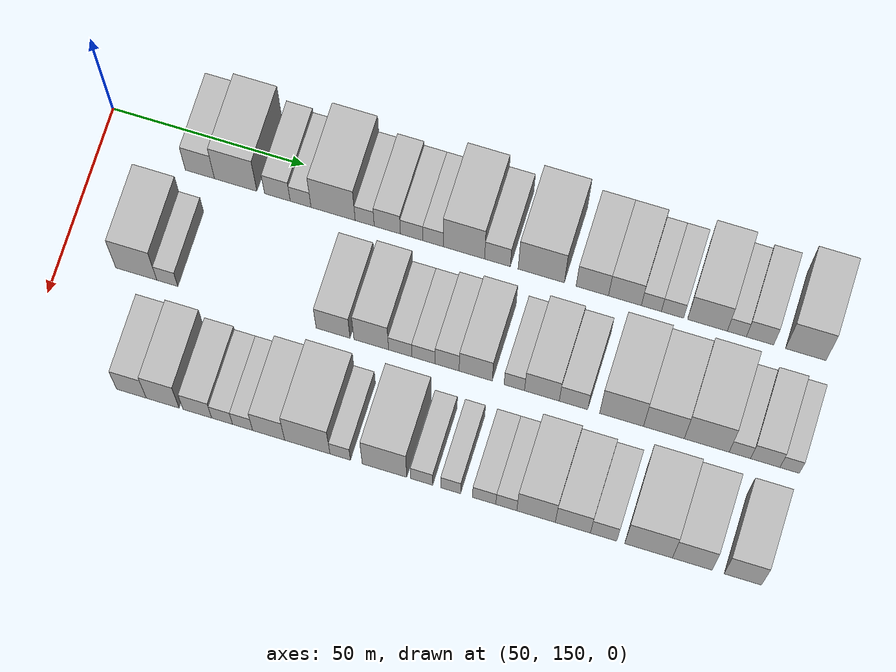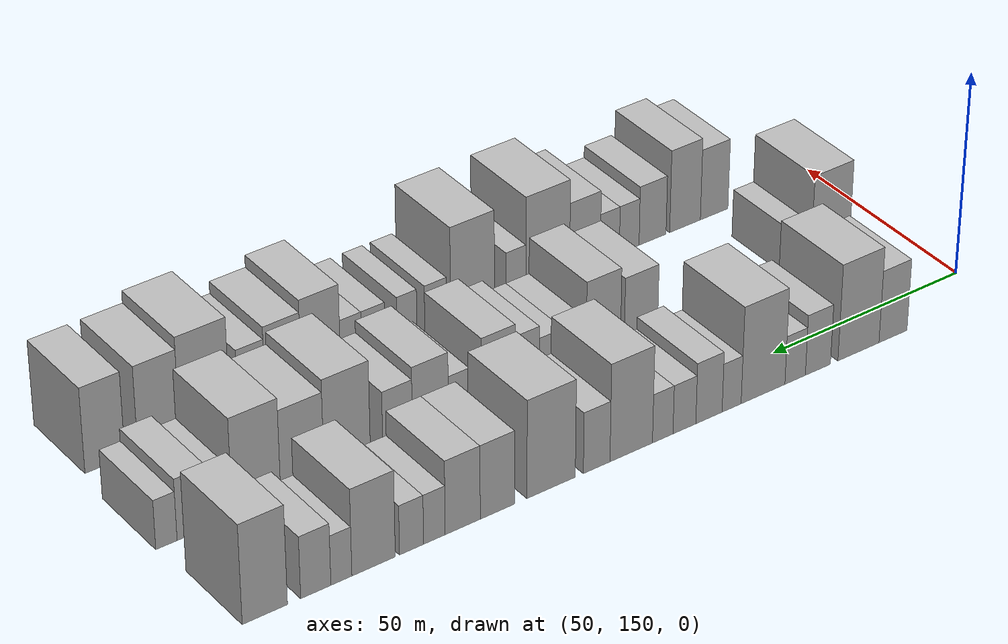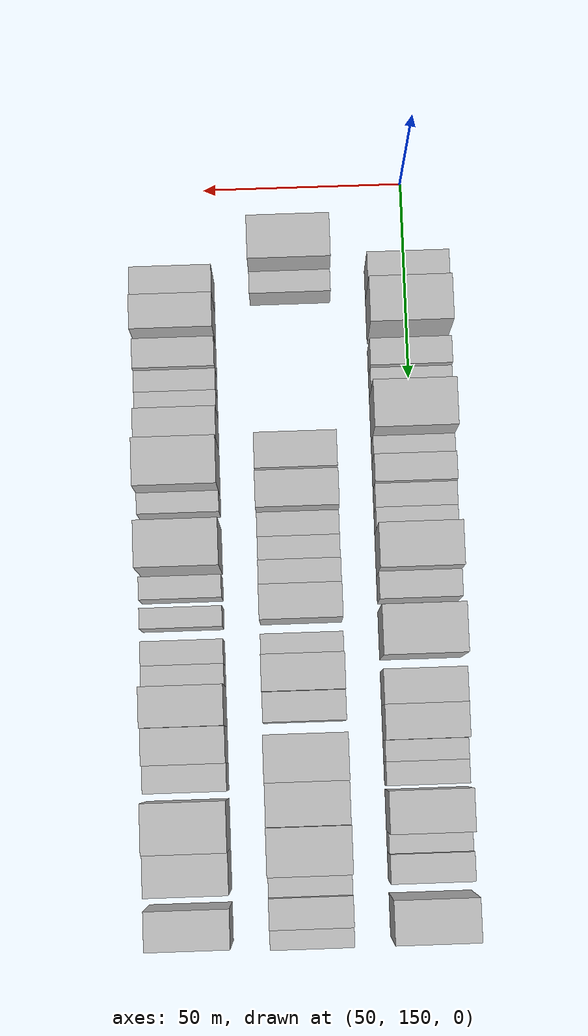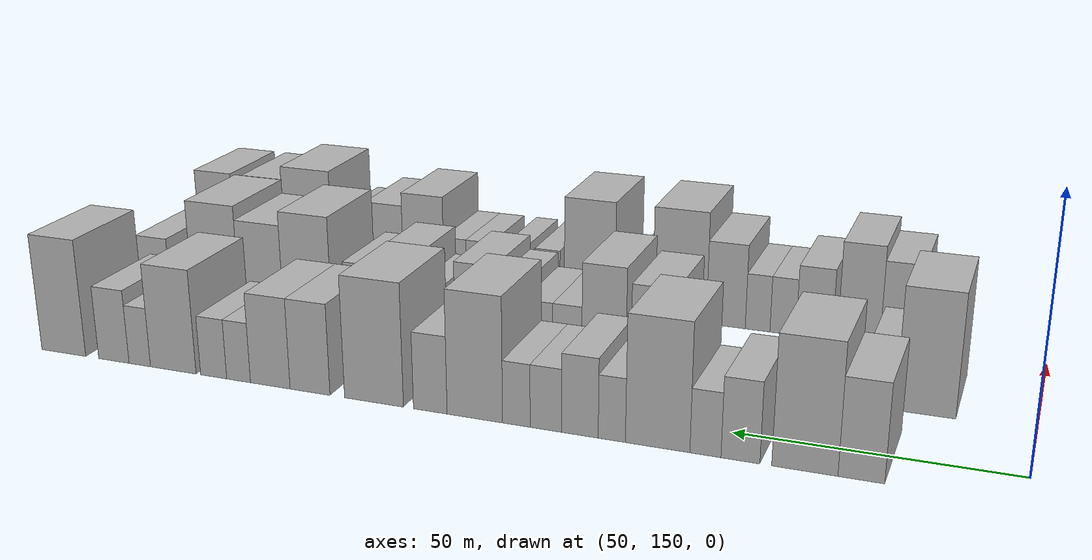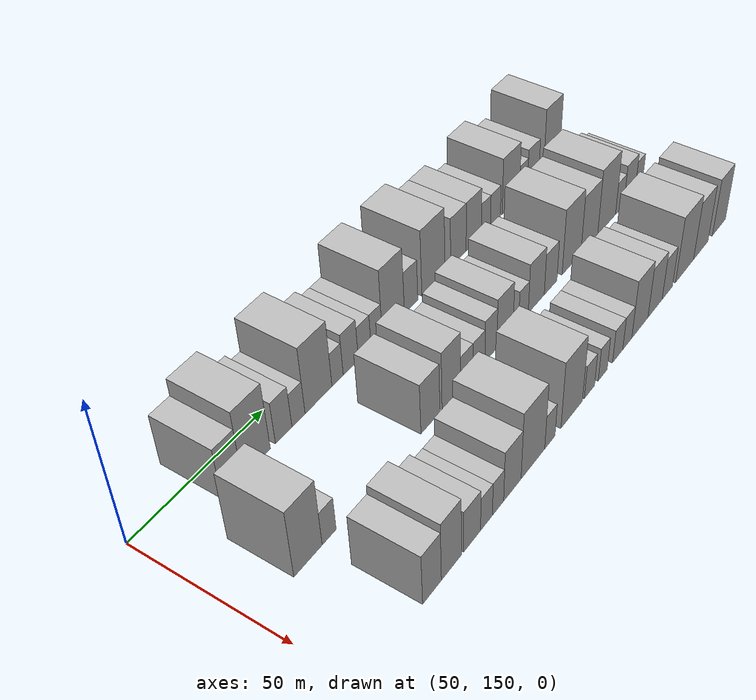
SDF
<sdf version="1.6">
 <world name="default">
  <model name="building_57">
   <static>1</static>
   <pose>50.0000 176.1401 0 0.000000 0.000000 0.000000</pose>
   <link name="link">
    <pose>0 0 9.00 0 0 0</pose>
    <collision name="collision"><geometry><box><size>20.0000 7.6315 18.0000</size></box></geometry></collision>
    <visual name="visual">
     <cast_shadows>0</cast_shadows>
     <geometry><box><size>20.0000 7.6315 18.0000</size></box></geometry>
     <material>
      <script>
       <uri>model://HANNAS_wall/materials/scripts</uri>
       <uri>model://HANNAS_wall/materials/textures</uri>
       <name>vrc/HANNAS_wall</name>
      </script>
     </material>
    </visual>
   </link>
  </model>
  <model name="building_58">
   <static>1</static>
   <pose>50.0000 185.4895 0 0.000000 0.000000 0.000000</pose>
   <link name="link">
    <pose>0 0 12.00 0 0 0</pose>
    <collision name="collision"><geometry><box><size>20.0000 11.0673 24.0000</size></box></geometry></collision>
    <visual name="visual">
     <cast_shadows>0</cast_shadows>
     <geometry><box><size>20.0000 11.0673 24.0000</size></box></geometry>
     <material>
      <script>
       <uri>model://HANNAS_wall/materials/scripts</uri>
       <uri>model://HANNAS_wall/materials/textures</uri>
       <name>vrc/HANNAS_wall</name>
      </script>
     </material>
    </visual>
   </link>
  </model>
  <model name="building_59">
   <static>1</static>
   <pose>50.0000 196.3591 0 0.000000 0.000000 0.000000</pose>
   <link name="link">
    <pose>0 0 7.50 0 0 0</pose>
    <collision name="collision"><geometry><box><size>20.0000 6.6718 15.0000</size></box></geometry></collision>
    <visual name="visual">
     <cast_shadows>0</cast_shadows>
     <geometry><box><size>20.0000 6.6718 15.0000</size></box></geometry>
     <material>
      <script>
       <uri>model://HANNAS_wall/materials/scripts</uri>
       <uri>model://HANNAS_wall/materials/textures</uri>
       <name>vrc/HANNAS_wall</name>
      </script>
     </material>
    </visual>
   </link>
  </model>
  <model name="building_60">
   <static>1</static>
   <pose>50.0000 202.4018 0 0.000000 0.000000 0.000000</pose>
   <link name="link">
    <pose>0 0 6.00 0 0 0</pose>
    <collision name="collision"><geometry><box><size>20.0000 5.4138 12.0000</size></box></geometry></collision>
    <visual name="visual">
     <cast_shadows>0</cast_shadows>
     <geometry><box><size>20.0000 5.4138 12.0000</size></box></geometry>
     <material>
      <script>
       <uri>model://HANNAS_wall/materials/scripts</uri>
       <uri>model://HANNAS_wall/materials/textures</uri>
       <name>vrc/HANNAS_wall</name>
      </script>
     </material>
    </visual>
   </link>
  </model>
  <model name="building_61">
   <static>1</static>
   <pose>50.0000 210.8431 0 0.000000 0.000000 0.000000</pose>
   <link name="link">
    <pose>0 0 12.00 0 0 0</pose>
    <collision name="collision"><geometry><box><size>20.0000 11.4686 24.0000</size></box></geometry></collision>
    <visual name="visual">
     <cast_shadows>0</cast_shadows>
     <geometry><box><size>20.0000 11.4686 24.0000</size></box></geometry>
     <material>
      <script>
       <uri>model://HANNAS_wall/materials/scripts</uri>
       <uri>model://HANNAS_wall/materials/textures</uri>
       <name>vrc/HANNAS_wall</name>
      </script>
     </material>
    </visual>
   </link>
  </model>
  <model name="building_62">
   <static>1</static>
   <pose>50.0000 219.0421 0 0.000000 0.000000 0.000000</pose>
   <link name="link">
    <pose>0 0 6.00 0 0 0</pose>
    <collision name="collision"><geometry><box><size>20.0000 4.9295 12.0000</size></box></geometry></collision>
    <visual name="visual">
     <cast_shadows>0</cast_shadows>
     <geometry><box><size>20.0000 4.9295 12.0000</size></box></geometry>
     <material>
      <script>
       <uri>model://HANNAS_wall/materials/scripts</uri>
       <uri>model://HANNAS_wall/materials/textures</uri>
       <name>vrc/HANNAS_wall</name>
      </script>
     </material>
    </visual>
   </link>
  </model>
  <model name="building_63">
   <static>1</static>
   <pose>50.0000 224.8947 0 0.000000 0.000000 0.000000</pose>
   <link name="link">
    <pose>0 0 7.50 0 0 0</pose>
    <collision name="collision"><geometry><box><size>20.0000 6.7757 15.0000</size></box></geometry></collision>
    <visual name="visual">
     <cast_shadows>0</cast_shadows>
     <geometry><box><size>20.0000 6.7757 15.0000</size></box></geometry>
     <material>
      <script>
       <uri>model://HANNAS_wall/materials/scripts</uri>
       <uri>model://HANNAS_wall/materials/textures</uri>
       <name>vrc/HANNAS_wall</name>
      </script>
     </material>
    </visual>
   </link>
  </model>
  <model name="building_64">
   <static>1</static>
   <pose>50.0000 231.1949 0 0.000000 0.000000 0.000000</pose>
   <link name="link">
    <pose>0 0 6.00 0 0 0</pose>
    <collision name="collision"><geometry><box><size>20.0000 5.8246 12.0000</size></box></geometry></collision>
    <visual name="visual">
     <cast_shadows>0</cast_shadows>
     <geometry><box><size>20.0000 5.8246 12.0000</size></box></geometry>
     <material>
      <script>
       <uri>model://HANNAS_wall/materials/scripts</uri>
       <uri>model://HANNAS_wall/materials/textures</uri>
       <name>vrc/HANNAS_wall</name>
      </script>
     </material>
    </visual>
   </link>
  </model>
  <model name="building_65">
   <static>1</static>
   <pose>50.0000 236.7126 0 0.000000 0.000000 0.000000</pose>
   <link name="link">
    <pose>0 0 6.00 0 0 0</pose>
    <collision name="collision"><geometry><box><size>20.0000 5.2108 12.0000</size></box></geometry></collision>
    <visual name="visual">
     <cast_shadows>0</cast_shadows>
     <geometry><box><size>20.0000 5.2108 12.0000</size></box></geometry>
     <material>
      <script>
       <uri>model://HANNAS_wall/materials/scripts</uri>
       <uri>model://HANNAS_wall/materials/textures</uri>
       <name>vrc/HANNAS_wall</name>
      </script>
     </material>
    </visual>
   </link>
  </model>
  <model name="building_66">
   <static>1</static>
   <pose>50.0000 244.6619 0 0.000000 0.000000 0.000000</pose>
   <link name="link">
    <pose>0 0 12.00 0 0 0</pose>
    <collision name="collision"><geometry><box><size>20.0000 10.6877 24.0000</size></box></geometry></collision>
    <visual name="visual">
     <cast_shadows>0</cast_shadows>
     <geometry><box><size>20.0000 10.6877 24.0000</size></box></geometry>
     <material>
      <script>
       <uri>model://HANNAS_wall/materials/scripts</uri>
       <uri>model://HANNAS_wall/materials/textures</uri>
       <name>vrc/HANNAS_wall</name>
      </script>
     </material>
    </visual>
   </link>
  </model>
  <model name="building_67">
   <static>1</static>
   <pose>50.0000 253.3157 0 0.000000 0.000000 0.000000</pose>
   <link name="link">
    <pose>0 0 7.50 0 0 0</pose>
    <collision name="collision"><geometry><box><size>20.0000 6.6201 15.0000</size></box></geometry></collision>
    <visual name="visual">
     <cast_shadows>0</cast_shadows>
     <geometry><box><size>20.0000 6.6201 15.0000</size></box></geometry>
     <material>
      <script>
       <uri>model://HANNAS_wall/materials/scripts</uri>
       <uri>model://HANNAS_wall/materials/textures</uri>
       <name>vrc/HANNAS_wall</name>
      </script>
     </material>
    </visual>
   </link>
  </model>
  <model name="building_68">
   <static>1</static>
   <pose>50.0000 264.5630 0 0.000000 0.000000 0.000000</pose>
   <link name="link">
    <pose>0 0 12.00 0 0 0</pose>
    <collision name="collision"><geometry><box><size>20.0000 11.8744 24.0000</size></box></geometry></collision>
    <visual name="visual">
     <cast_shadows>0</cast_shadows>
     <geometry><box><size>20.0000 11.8744 24.0000</size></box></geometry>
     <material>
      <script>
       <uri>model://HANNAS_wall/materials/scripts</uri>
       <uri>model://HANNAS_wall/materials/textures</uri>
       <name>vrc/HANNAS_wall</name>
      </script>
     </material>
    </visual>
   </link>
  </model>
  <model name="building_69">
   <static>1</static>
   <pose>50.0000 277.6521 0 0.000000 0.000000 0.000000</pose>
   <link name="link">
    <pose>0 0 9.00 0 0 0</pose>
    <collision name="collision"><geometry><box><size>20.0000 8.3037 18.0000</size></box></geometry></collision>
    <visual name="visual">
     <cast_shadows>0</cast_shadows>
     <geometry><box><size>20.0000 8.3037 18.0000</size></box></geometry>
     <material>
      <script>
       <uri>model://HANNAS_wall/materials/scripts</uri>
       <uri>model://HANNAS_wall/materials/textures</uri>
       <name>vrc/HANNAS_wall</name>
      </script>
     </material>
    </visual>
   </link>
  </model>
  <model name="building_70">
   <static>1</static>
   <pose>50.0000 285.9998 0 0.000000 0.000000 0.000000</pose>
   <link name="link">
    <pose>0 0 9.00 0 0 0</pose>
    <collision name="collision"><geometry><box><size>20.0000 8.3918 18.0000</size></box></geometry></collision>
    <visual name="visual">
     <cast_shadows>0</cast_shadows>
     <geometry><box><size>20.0000 8.3918 18.0000</size></box></geometry>
     <material>
      <script>
       <uri>model://HANNAS_wall/materials/scripts</uri>
       <uri>model://HANNAS_wall/materials/textures</uri>
       <name>vrc/HANNAS_wall</name>
      </script>
     </material>
    </visual>
   </link>
  </model>
  <model name="building_71">
   <static>1</static>
   <pose>50.0000 292.7558 0 0.000000 0.000000 0.000000</pose>
   <link name="link">
    <pose>0 0 6.00 0 0 0</pose>
    <collision name="collision"><geometry><box><size>20.0000 5.1201 12.0000</size></box></geometry></collision>
    <visual name="visual">
     <cast_shadows>0</cast_shadows>
     <geometry><box><size>20.0000 5.1201 12.0000</size></box></geometry>
     <material>
      <script>
       <uri>model://HANNAS_wall/materials/scripts</uri>
       <uri>model://HANNAS_wall/materials/textures</uri>
       <name>vrc/HANNAS_wall</name>
      </script>
     </material>
    </visual>
   </link>
  </model>
  <model name="building_72">
   <static>1</static>
   <pose>50.0000 298.1533 0 0.000000 0.000000 0.000000</pose>
   <link name="link">
    <pose>0 0 6.00 0 0 0</pose>
    <collision name="collision"><geometry><box><size>20.0000 5.6749 12.0000</size></box></geometry></collision>
    <visual name="visual">
     <cast_shadows>0</cast_shadows>
     <geometry><box><size>20.0000 5.6749 12.0000</size></box></geometry>
     <material>
      <script>
       <uri>model://HANNAS_wall/materials/scripts</uri>
       <uri>model://HANNAS_wall/materials/textures</uri>
       <name>vrc/HANNAS_wall</name>
      </script>
     </material>
    </visual>
   </link>
  </model>
  <model name="building_73">
   <static>1</static>
   <pose>50.0000 307.0482 0 0.000000 0.000000 0.000000</pose>
   <link name="link">
    <pose>0 0 10.50 0 0 0</pose>
    <collision name="collision"><geometry><box><size>20.0000 10.1150 21.0000</size></box></geometry></collision>
    <visual name="visual">
     <cast_shadows>0</cast_shadows>
     <geometry><box><size>20.0000 10.1150 21.0000</size></box></geometry>
     <material>
      <script>
       <uri>model://HANNAS_wall/materials/scripts</uri>
       <uri>model://HANNAS_wall/materials/textures</uri>
       <name>vrc/HANNAS_wall</name>
      </script>
     </material>
    </visual>
   </link>
  </model>
  <model name="building_74">
   <static>1</static>
   <pose>50.0000 314.5281 0 0.000000 0.000000 0.000000</pose>
   <link name="link">
    <pose>0 0 6.00 0 0 0</pose>
    <collision name="collision"><geometry><box><size>20.0000 4.8448 12.0000</size></box></geometry></collision>
    <visual name="visual">
     <cast_shadows>0</cast_shadows>
     <geometry><box><size>20.0000 4.8448 12.0000</size></box></geometry>
     <material>
      <script>
       <uri>model://HANNAS_wall/materials/scripts</uri>
       <uri>model://HANNAS_wall/materials/textures</uri>
       <name>vrc/HANNAS_wall</name>
      </script>
     </material>
    </visual>
   </link>
  </model>
  <model name="building_75">
   <static>1</static>
   <pose>50.0000 320.4189 0 0.000000 0.000000 0.000000</pose>
   <link name="link">
    <pose>0 0 7.50 0 0 0</pose>
    <collision name="collision"><geometry><box><size>20.0000 6.9368 15.0000</size></box></geometry></collision>
    <visual name="visual">
     <cast_shadows>0</cast_shadows>
     <geometry><box><size>20.0000 6.9368 15.0000</size></box></geometry>
     <material>
      <script>
       <uri>model://HANNAS_wall/materials/scripts</uri>
       <uri>model://HANNAS_wall/materials/textures</uri>
       <name>vrc/HANNAS_wall</name>
      </script>
     </material>
    </visual>
   </link>
  </model>
  <model name="building_76">
   <static>1</static>
   <pose>50.0000 332.0120 0 0.000000 0.000000 0.000000</pose>
   <link name="link">
    <pose>0 0 12.00 0 0 0</pose>
    <collision name="collision"><geometry><box><size>20.0000 10.2495 24.0000</size></box></geometry></collision>
    <visual name="visual">
     <cast_shadows>0</cast_shadows>
     <geometry><box><size>20.0000 10.2495 24.0000</size></box></geometry>
     <material>
      <script>
       <uri>model://HANNAS_wall/materials/scripts</uri>
       <uri>model://HANNAS_wall/materials/textures</uri>
       <name>vrc/HANNAS_wall</name>
      </script>
     </material>
    </visual>
   </link>
  </model>
  <model name="building_131">
   <static>1</static>
   <pose>79.0000 169.3148 0 0.000000 0.000000 0.000000</pose>
   <link name="link">
    <pose>0 0 12.00 0 0 0</pose>
    <collision name="collision"><geometry><box><size>20.0000 10.6636 24.0000</size></box></geometry></collision>
    <visual name="visual">
     <cast_shadows>0</cast_shadows>
     <geometry><box><size>20.0000 10.6636 24.0000</size></box></geometry>
     <material>
      <script>
       <uri>model://HANNAS_wall/materials/scripts</uri>
       <uri>model://HANNAS_wall/materials/textures</uri>
       <name>vrc/HANNAS_wall</name>
      </script>
     </material>
    </visual>
   </link>
  </model>
  <model name="building_132">
   <static>1</static>
   <pose>79.0000 177.3720 0 0.000000 0.000000 0.000000</pose>
   <link name="link">
    <pose>0 0 6.00 0 0 0</pose>
    <collision name="collision"><geometry><box><size>20.0000 5.4509 12.0000</size></box></geometry></collision>
    <visual name="visual">
     <cast_shadows>0</cast_shadows>
     <geometry><box><size>20.0000 5.4509 12.0000</size></box></geometry>
     <material>
      <script>
       <uri>model://HANNAS_wall/materials/scripts</uri>
       <uri>model://HANNAS_wall/materials/textures</uri>
       <name>vrc/HANNAS_wall</name>
      </script>
     </material>
    </visual>
   </link>
  </model>
  <model name="building_133">
   <static>1</static>
   <pose>79.0000 220.1348 0 0.000000 0.000000 0.000000</pose>
   <link name="link">
    <pose>0 0 9.00 0 0 0</pose>
    <collision name="collision"><geometry><box><size>20.0000 8.6915 18.0000</size></box></geometry></collision>
    <visual name="visual">
     <cast_shadows>0</cast_shadows>
     <geometry><box><size>20.0000 8.6915 18.0000</size></box></geometry>
     <material>
      <script>
       <uri>model://HANNAS_wall/materials/scripts</uri>
       <uri>model://HANNAS_wall/materials/textures</uri>
       <name>vrc/HANNAS_wall</name>
      </script>
     </material>
    </visual>
   </link>
  </model>
  <model name="building_134">
   <static>1</static>
   <pose>79.0000 229.9188 0 0.000000 0.000000 0.000000</pose>
   <link name="link">
    <pose>0 0 10.50 0 0 0</pose>
    <collision name="collision"><geometry><box><size>20.0000 8.8765 21.0000</size></box></geometry></collision>
    <visual name="visual">
     <cast_shadows>0</cast_shadows>
     <geometry><box><size>20.0000 8.8765 21.0000</size></box></geometry>
     <material>
      <script>
       <uri>model://HANNAS_wall/materials/scripts</uri>
       <uri>model://HANNAS_wall/materials/textures</uri>
       <name>vrc/HANNAS_wall</name>
      </script>
     </material>
    </visual>
   </link>
  </model>
  <model name="building_135">
   <static>1</static>
   <pose>79.0000 237.3336 0 0.000000 0.000000 0.000000</pose>
   <link name="link">
    <pose>0 0 6.00 0 0 0</pose>
    <collision name="collision"><geometry><box><size>20.0000 5.9530 12.0000</size></box></geometry></collision>
    <visual name="visual">
     <cast_shadows>0</cast_shadows>
     <geometry><box><size>20.0000 5.9530 12.0000</size></box></geometry>
     <material>
      <script>
       <uri>model://HANNAS_wall/materials/scripts</uri>
       <uri>model://HANNAS_wall/materials/textures</uri>
       <name>vrc/HANNAS_wall</name>
      </script>
     </material>
    </visual>
   </link>
  </model>
  <model name="building_136">
   <static>1</static>
   <pose>79.0000 243.2887 0 0.000000 0.000000 0.000000</pose>
   <link name="link">
    <pose>0 0 6.00 0 0 0</pose>
    <collision name="collision"><geometry><box><size>20.0000 5.9573 12.0000</size></box></geometry></collision>
    <visual name="visual">
     <cast_shadows>0</cast_shadows>
     <geometry><box><size>20.0000 5.9573 12.0000</size></box></geometry>
     <material>
      <script>
       <uri>model://HANNAS_wall/materials/scripts</uri>
       <uri>model://HANNAS_wall/materials/textures</uri>
       <name>vrc/HANNAS_wall</name>
      </script>
     </material>
    </visual>
   </link>
  </model>
  <model name="building_137">
   <static>1</static>
   <pose>79.0000 249.3193 0 0.000000 0.000000 0.000000</pose>
   <link name="link">
    <pose>0 0 7.50 0 0 0</pose>
    <collision name="collision"><geometry><box><size>20.0000 6.1040 15.0000</size></box></geometry></collision>
    <visual name="visual">
     <cast_shadows>0</cast_shadows>
     <geometry><box><size>20.0000 6.1040 15.0000</size></box></geometry>
     <material>
      <script>
       <uri>model://HANNAS_wall/materials/scripts</uri>
       <uri>model://HANNAS_wall/materials/textures</uri>
       <name>vrc/HANNAS_wall</name>
      </script>
     </material>
    </visual>
   </link>
  </model>
  <model name="building_138">
   <static>1</static>
   <pose>79.0000 256.5971 0 0.000000 0.000000 0.000000</pose>
   <link name="link">
    <pose>0 0 9.00 0 0 0</pose>
    <collision name="collision"><geometry><box><size>20.0000 8.4516 18.0000</size></box></geometry></collision>
    <visual name="visual">
     <cast_shadows>0</cast_shadows>
     <geometry><box><size>20.0000 8.4516 18.0000</size></box></geometry>
     <material>
      <script>
       <uri>model://HANNAS_wall/materials/scripts</uri>
       <uri>model://HANNAS_wall/materials/textures</uri>
       <name>vrc/HANNAS_wall</name>
      </script>
     </material>
    </visual>
   </link>
  </model>
  <model name="building_139">
   <static>1</static>
   <pose>79.0000 266.4188 0 0.000000 0.000000 0.000000</pose>
   <link name="link">
    <pose>0 0 6.00 0 0 0</pose>
    <collision name="collision"><geometry><box><size>20.0000 5.1918 12.0000</size></box></geometry></collision>
    <visual name="visual">
     <cast_shadows>0</cast_shadows>
     <geometry><box><size>20.0000 5.1918 12.0000</size></box></geometry>
     <material>
      <script>
       <uri>model://HANNAS_wall/materials/scripts</uri>
       <uri>model://HANNAS_wall/materials/textures</uri>
       <name>vrc/HANNAS_wall</name>
      </script>
     </material>
    </visual>
   </link>
  </model>
  <model name="building_140">
   <static>1</static>
   <pose>79.0000 273.4318 0 0.000000 0.000000 0.000000</pose>
   <link name="link">
    <pose>0 0 9.00 0 0 0</pose>
    <collision name="collision"><geometry><box><size>20.0000 8.8342 18.0000</size></box></geometry></collision>
    <visual name="visual">
     <cast_shadows>0</cast_shadows>
     <geometry><box><size>20.0000 8.8342 18.0000</size></box></geometry>
     <material>
      <script>
       <uri>model://HANNAS_wall/materials/scripts</uri>
       <uri>model://HANNAS_wall/materials/textures</uri>
       <name>vrc/HANNAS_wall</name>
      </script>
     </material>
    </visual>
   </link>
  </model>
  <model name="building_141">
   <static>1</static>
   <pose>79.0000 281.4601 0 0.000000 0.000000 0.000000</pose>
   <link name="link">
    <pose>0 0 7.50 0 0 0</pose>
    <collision name="collision"><geometry><box><size>20.0000 7.2224 15.0000</size></box></geometry></collision>
    <visual name="visual">
     <cast_shadows>0</cast_shadows>
     <geometry><box><size>20.0000 7.2224 15.0000</size></box></geometry>
     <material>
      <script>
       <uri>model://HANNAS_wall/materials/scripts</uri>
       <uri>model://HANNAS_wall/materials/textures</uri>
       <name>vrc/HANNAS_wall</name>
      </script>
     </material>
    </visual>
   </link>
  </model>
  <model name="building_142">
   <static>1</static>
   <pose>79.0000 293.6248 0 0.000000 0.000000 0.000000</pose>
   <link name="link">
    <pose>0 0 12.00 0 0 0</pose>
    <collision name="collision"><geometry><box><size>20.0000 11.1070 24.0000</size></box></geometry></collision>
    <visual name="visual">
     <cast_shadows>0</cast_shadows>
     <geometry><box><size>20.0000 11.1070 24.0000</size></box></geometry>
     <material>
      <script>
       <uri>model://HANNAS_wall/materials/scripts</uri>
       <uri>model://HANNAS_wall/materials/textures</uri>
       <name>vrc/HANNAS_wall</name>
      </script>
     </material>
    </visual>
   </link>
  </model>
  <model name="building_143">
   <static>1</static>
   <pose>79.0000 304.3255 0 0.000000 0.000000 0.000000</pose>
   <link name="link">
    <pose>0 0 10.50 0 0 0</pose>
    <collision name="collision"><geometry><box><size>20.0000 10.2944 21.0000</size></box></geometry></collision>
    <visual name="visual">
     <cast_shadows>0</cast_shadows>
     <geometry><box><size>20.0000 10.2944 21.0000</size></box></geometry>
     <material>
      <script>
       <uri>model://HANNAS_wall/materials/scripts</uri>
       <uri>model://HANNAS_wall/materials/textures</uri>
       <name>vrc/HANNAS_wall</name>
      </script>
     </material>
    </visual>
   </link>
  </model>
  <model name="building_144">
   <static>1</static>
   <pose>79.0000 315.1258 0 0.000000 0.000000 0.000000</pose>
   <link name="link">
    <pose>0 0 12.00 0 0 0</pose>
    <collision name="collision"><geometry><box><size>20.0000 11.3062 24.0000</size></box></geometry></collision>
    <visual name="visual">
     <cast_shadows>0</cast_shadows>
     <geometry><box><size>20.0000 11.3062 24.0000</size></box></geometry>
     <material>
      <script>
       <uri>model://HANNAS_wall/materials/scripts</uri>
       <uri>model://HANNAS_wall/materials/textures</uri>
       <name>vrc/HANNAS_wall</name>
      </script>
     </material>
    </visual>
   </link>
  </model>
  <model name="building_145">
   <static>1</static>
   <pose>79.0000 323.4766 0 0.000000 0.000000 0.000000</pose>
   <link name="link">
    <pose>0 0 6.00 0 0 0</pose>
    <collision name="collision"><geometry><box><size>20.0000 5.3956 12.0000</size></box></geometry></collision>
    <visual name="visual">
     <cast_shadows>0</cast_shadows>
     <geometry><box><size>20.0000 5.3956 12.0000</size></box></geometry>
     <material>
      <script>
       <uri>model://HANNAS_wall/materials/scripts</uri>
       <uri>model://HANNAS_wall/materials/textures</uri>
       <name>vrc/HANNAS_wall</name>
      </script>
     </material>
    </visual>
   </link>
  </model>
  <model name="building_146">
   <static>1</static>
   <pose>79.0000 329.8544 0 0.000000 0.000000 0.000000</pose>
   <link name="link">
    <pose>0 0 7.50 0 0 0</pose>
    <collision name="collision"><geometry><box><size>20.0000 7.3600 15.0000</size></box></geometry></collision>
    <visual name="visual">
     <cast_shadows>0</cast_shadows>
     <geometry><box><size>20.0000 7.3600 15.0000</size></box></geometry>
     <material>
      <script>
       <uri>model://HANNAS_wall/materials/scripts</uri>
       <uri>model://HANNAS_wall/materials/textures</uri>
       <name>vrc/HANNAS_wall</name>
      </script>
     </material>
    </visual>
   </link>
  </model>
  <model name="building_147">
   <static>1</static>
   <pose>79.0000 335.9683 0 0.000000 0.000000 0.000000</pose>
   <link name="link">
    <pose>0 0 6.00 0 0 0</pose>
    <collision name="collision"><geometry><box><size>20.0000 4.8679 12.0000</size></box></geometry></collision>
    <visual name="visual">
     <cast_shadows>0</cast_shadows>
     <geometry><box><size>20.0000 4.8679 12.0000</size></box></geometry>
     <material>
      <script>
       <uri>model://HANNAS_wall/materials/scripts</uri>
       <uri>model://HANNAS_wall/materials/textures</uri>
       <name>vrc/HANNAS_wall</name>
      </script>
     </material>
    </visual>
   </link>
  </model>
  <model name="building_208">
   <static>1</static>
   <pose>108.0000 177.9013 0 0.000000 0.000000 0.000000</pose>
   <link name="link">
    <pose>0 0 9.00 0 0 0</pose>
    <collision name="collision"><geometry><box><size>20.0000 7.6265 18.0000</size></box></geometry></collision>
    <visual name="visual">
     <cast_shadows>0</cast_shadows>
     <geometry><box><size>20.0000 7.6265 18.0000</size></box></geometry>
     <material>
      <script>
       <uri>model://HANNAS_wall/materials/scripts</uri>
       <uri>model://HANNAS_wall/materials/textures</uri>
       <name>vrc/HANNAS_wall</name>
      </script>
     </material>
    </visual>
   </link>
  </model>
  <model name="building_209">
   <static>1</static>
   <pose>108.0000 185.9286 0 0.000000 0.000000 0.000000</pose>
   <link name="link">
    <pose>0 0 10.50 0 0 0</pose>
    <collision name="collision"><geometry><box><size>20.0000 8.4283 21.0000</size></box></geometry></collision>
    <visual name="visual">
     <cast_shadows>0</cast_shadows>
     <geometry><box><size>20.0000 8.4283 21.0000</size></box></geometry>
     <material>
      <script>
       <uri>model://HANNAS_wall/materials/scripts</uri>
       <uri>model://HANNAS_wall/materials/textures</uri>
       <name>vrc/HANNAS_wall</name>
      </script>
     </material>
    </visual>
   </link>
  </model>
  <model name="building_210">
   <static>1</static>
   <pose>108.0000 194.8079 0 0.000000 0.000000 0.000000</pose>
   <link name="link">
    <pose>0 0 7.50 0 0 0</pose>
    <collision name="collision"><geometry><box><size>20.0000 7.3304 15.0000</size></box></geometry></collision>
    <visual name="visual">
     <cast_shadows>0</cast_shadows>
     <geometry><box><size>20.0000 7.3304 15.0000</size></box></geometry>
     <material>
      <script>
       <uri>model://HANNAS_wall/materials/scripts</uri>
       <uri>model://HANNAS_wall/materials/textures</uri>
       <name>vrc/HANNAS_wall</name>
      </script>
     </material>
    </visual>
   </link>
  </model>
  <model name="building_211">
   <static>1</static>
   <pose>108.0000 201.1350 0 0.000000 0.000000 0.000000</pose>
   <link name="link">
    <pose>0 0 6.00 0 0 0</pose>
    <collision name="collision"><geometry><box><size>20.0000 5.3236 12.0000</size></box></geometry></collision>
    <visual name="visual">
     <cast_shadows>0</cast_shadows>
     <geometry><box><size>20.0000 5.3236 12.0000</size></box></geometry>
     <material>
      <script>
       <uri>model://HANNAS_wall/materials/scripts</uri>
       <uri>model://HANNAS_wall/materials/textures</uri>
       <name>vrc/HANNAS_wall</name>
      </script>
     </material>
    </visual>
   </link>
  </model>
  <model name="building_212">
   <static>1</static>
   <pose>108.0000 206.3562 0 0.000000 0.000000 0.000000</pose>
   <link name="link">
    <pose>0 0 6.00 0 0 0</pose>
    <collision name="collision"><geometry><box><size>20.0000 5.1189 12.0000</size></box></geometry></collision>
    <visual name="visual">
     <cast_shadows>0</cast_shadows>
     <geometry><box><size>20.0000 5.1189 12.0000</size></box></geometry>
     <material>
      <script>
       <uri>model://HANNAS_wall/materials/scripts</uri>
       <uri>model://HANNAS_wall/materials/textures</uri>
       <name>vrc/HANNAS_wall</name>
      </script>
     </material>
    </visual>
   </link>
  </model>
  <model name="building_213">
   <static>1</static>
   <pose>108.0000 213.0030 0 0.000000 0.000000 0.000000</pose>
   <link name="link">
    <pose>0 0 9.00 0 0 0</pose>
    <collision name="collision"><geometry><box><size>20.0000 8.1747 18.0000</size></box></geometry></collision>
    <visual name="visual">
     <cast_shadows>0</cast_shadows>
     <geometry><box><size>20.0000 8.1747 18.0000</size></box></geometry>
     <material>
      <script>
       <uri>model://HANNAS_wall/materials/scripts</uri>
       <uri>model://HANNAS_wall/materials/textures</uri>
       <name>vrc/HANNAS_wall</name>
      </script>
     </material>
    </visual>
   </link>
  </model>
  <model name="building_214">
   <static>1</static>
   <pose>108.0000 222.8616 0 0.000000 0.000000 0.000000</pose>
   <link name="link">
    <pose>0 0 12.00 0 0 0</pose>
    <collision name="collision"><geometry><box><size>20.0000 11.5425 24.0000</size></box></geometry></collision>
    <visual name="visual">
     <cast_shadows>0</cast_shadows>
     <geometry><box><size>20.0000 11.5425 24.0000</size></box></geometry>
     <material>
      <script>
       <uri>model://HANNAS_wall/materials/scripts</uri>
       <uri>model://HANNAS_wall/materials/textures</uri>
       <name>vrc/HANNAS_wall</name>
      </script>
     </material>
    </visual>
   </link>
  </model>
  <model name="building_215">
   <static>1</static>
   <pose>108.0000 231.2211 0 0.000000 0.000000 0.000000</pose>
   <link name="link">
    <pose>0 0 6.00 0 0 0</pose>
    <collision name="collision"><geometry><box><size>20.0000 5.1764 12.0000</size></box></geometry></collision>
    <visual name="visual">
     <cast_shadows>0</cast_shadows>
     <geometry><box><size>20.0000 5.1764 12.0000</size></box></geometry>
     <material>
      <script>
       <uri>model://HANNAS_wall/materials/scripts</uri>
       <uri>model://HANNAS_wall/materials/textures</uri>
       <name>vrc/HANNAS_wall</name>
      </script>
     </material>
    </visual>
   </link>
  </model>
  <model name="building_216">
   <static>1</static>
   <pose>108.0000 242.4436 0 0.000000 0.000000 0.000000</pose>
   <link name="link">
    <pose>0 0 12.00 0 0 0</pose>
    <collision name="collision"><geometry><box><size>20.0000 11.2688 24.0000</size></box></geometry></collision>
    <visual name="visual">
     <cast_shadows>0</cast_shadows>
     <geometry><box><size>20.0000 11.2688 24.0000</size></box></geometry>
     <material>
      <script>
       <uri>model://HANNAS_wall/materials/scripts</uri>
       <uri>model://HANNAS_wall/materials/textures</uri>
       <name>vrc/HANNAS_wall</name>
      </script>
     </material>
    </visual>
   </link>
  </model>
  <model name="building_217">
   <static>1</static>
   <pose>108.0000 251.8648 0 0.000000 0.000000 0.000000</pose>
   <link name="link">
    <pose>0 0 6.00 0 0 0</pose>
    <collision name="collision"><geometry><box><size>20.0000 5.5735 12.0000</size></box></geometry></collision>
    <visual name="visual">
     <cast_shadows>0</cast_shadows>
     <geometry><box><size>20.0000 5.5735 12.0000</size></box></geometry>
     <material>
      <script>
       <uri>model://HANNAS_wall/materials/scripts</uri>
       <uri>model://HANNAS_wall/materials/textures</uri>
       <name>vrc/HANNAS_wall</name>
      </script>
     </material>
    </visual>
   </link>
  </model>
  <model name="building_218">
   <static>1</static>
   <pose>108.0000 259.1611 0 0.000000 0.000000 0.000000</pose>
   <link name="link">
    <pose>0 0 6.00 0 0 0</pose>
    <collision name="collision"><geometry><box><size>20.0000 5.0190 12.0000</size></box></geometry></collision>
    <visual name="visual">
     <cast_shadows>0</cast_shadows>
     <geometry><box><size>20.0000 5.0190 12.0000</size></box></geometry>
     <material>
      <script>
       <uri>model://HANNAS_wall/materials/scripts</uri>
       <uri>model://HANNAS_wall/materials/textures</uri>
       <name>vrc/HANNAS_wall</name>
      </script>
     </material>
    </visual>
   </link>
  </model>
  <model name="building_219">
   <static>1</static>
   <pose>108.0000 267.6099 0 0.000000 0.000000 0.000000</pose>
   <link name="link">
    <pose>0 0 6.00 0 0 0</pose>
    <collision name="collision"><geometry><box><size>20.0000 5.8785 12.0000</size></box></geometry></collision>
    <visual name="visual">
     <cast_shadows>0</cast_shadows>
     <geometry><box><size>20.0000 5.8785 12.0000</size></box></geometry>
     <material>
      <script>
       <uri>model://HANNAS_wall/materials/scripts</uri>
       <uri>model://HANNAS_wall/materials/textures</uri>
       <name>vrc/HANNAS_wall</name>
      </script>
     </material>
    </visual>
   </link>
  </model>
  <model name="building_220">
   <static>1</static>
   <pose>108.0000 273.1856 0 0.000000 0.000000 0.000000</pose>
   <link name="link">
    <pose>0 0 6.00 0 0 0</pose>
    <collision name="collision"><geometry><box><size>20.0000 5.2729 12.0000</size></box></geometry></collision>
    <visual name="visual">
     <cast_shadows>0</cast_shadows>
     <geometry><box><size>20.0000 5.2729 12.0000</size></box></geometry>
     <material>
      <script>
       <uri>model://HANNAS_wall/materials/scripts</uri>
       <uri>model://HANNAS_wall/materials/textures</uri>
       <name>vrc/HANNAS_wall</name>
      </script>
     </material>
    </visual>
   </link>
  </model>
  <model name="building_221">
   <static>1</static>
   <pose>108.0000 280.6666 0 0.000000 0.000000 0.000000</pose>
   <link name="link">
    <pose>0 0 10.50 0 0 0</pose>
    <collision name="collision"><geometry><box><size>20.0000 9.6891 21.0000</size></box></geometry></collision>
    <visual name="visual">
     <cast_shadows>0</cast_shadows>
     <geometry><box><size>20.0000 9.6891 21.0000</size></box></geometry>
     <material>
      <script>
       <uri>model://HANNAS_wall/materials/scripts</uri>
       <uri>model://HANNAS_wall/materials/textures</uri>
       <name>vrc/HANNAS_wall</name>
      </script>
     </material>
    </visual>
   </link>
  </model>
  <model name="building_222">
   <static>1</static>
   <pose>108.0000 289.9090 0 0.000000 0.000000 0.000000</pose>
   <link name="link">
    <pose>0 0 9.00 0 0 0</pose>
    <collision name="collision"><geometry><box><size>20.0000 8.7957 18.0000</size></box></geometry></collision>
    <visual name="visual">
     <cast_shadows>0</cast_shadows>
     <geometry><box><size>20.0000 8.7957 18.0000</size></box></geometry>
     <material>
      <script>
       <uri>model://HANNAS_wall/materials/scripts</uri>
       <uri>model://HANNAS_wall/materials/textures</uri>
       <name>vrc/HANNAS_wall</name>
      </script>
     </material>
    </visual>
   </link>
  </model>
  <model name="building_223">
   <static>1</static>
   <pose>108.0000 297.6008 0 0.000000 0.000000 0.000000</pose>
   <link name="link">
    <pose>0 0 7.50 0 0 0</pose>
    <collision name="collision"><geometry><box><size>20.0000 6.5879 15.0000</size></box></geometry></collision>
    <visual name="visual">
     <cast_shadows>0</cast_shadows>
     <geometry><box><size>20.0000 6.5879 15.0000</size></box></geometry>
     <material>
      <script>
       <uri>model://HANNAS_wall/materials/scripts</uri>
       <uri>model://HANNAS_wall/materials/textures</uri>
       <name>vrc/HANNAS_wall</name>
      </script>
     </material>
    </visual>
   </link>
  </model>
  <model name="building_224">
   <static>1</static>
   <pose>108.0000 308.8609 0 0.000000 0.000000 0.000000</pose>
   <link name="link">
    <pose>0 0 12.00 0 0 0</pose>
    <collision name="collision"><geometry><box><size>20.0000 11.9323 24.0000</size></box></geometry></collision>
    <visual name="visual">
     <cast_shadows>0</cast_shadows>
     <geometry><box><size>20.0000 11.9323 24.0000</size></box></geometry>
     <material>
      <script>
       <uri>model://HANNAS_wall/materials/scripts</uri>
       <uri>model://HANNAS_wall/materials/textures</uri>
       <name>vrc/HANNAS_wall</name>
      </script>
     </material>
    </visual>
   </link>
  </model>
  <model name="building_225">
   <static>1</static>
   <pose>108.0000 319.7692 0 0.000000 0.000000 0.000000</pose>
   <link name="link">
    <pose>0 0 10.50 0 0 0</pose>
    <collision name="collision"><geometry><box><size>20.0000 9.8844 21.0000</size></box></geometry></collision>
    <visual name="visual">
     <cast_shadows>0</cast_shadows>
     <geometry><box><size>20.0000 9.8844 21.0000</size></box></geometry>
     <material>
      <script>
       <uri>model://HANNAS_wall/materials/scripts</uri>
       <uri>model://HANNAS_wall/materials/textures</uri>
       <name>vrc/HANNAS_wall</name>
      </script>
     </material>
    </visual>
   </link>
  </model>
  <model name="building_226">
   <static>1</static>
   <pose>108.0000 332.3617 0 0.000000 0.000000 0.000000</pose>
   <link name="link">
    <pose>0 0 10.50 0 0 0</pose>
    <collision name="collision"><geometry><box><size>20.0000 9.3005 21.0000</size></box></geometry></collision>
    <visual name="visual">
     <cast_shadows>0</cast_shadows>
     <geometry><box><size>20.0000 9.3005 21.0000</size></box></geometry>
     <material>
      <script>
       <uri>model://HANNAS_wall/materials/scripts</uri>
       <uri>model://HANNAS_wall/materials/textures</uri>
       <name>vrc/HANNAS_wall</name>
      </script>
     </material>
    </visual>
   </link>
  </model>
 </world>
</sdf>
